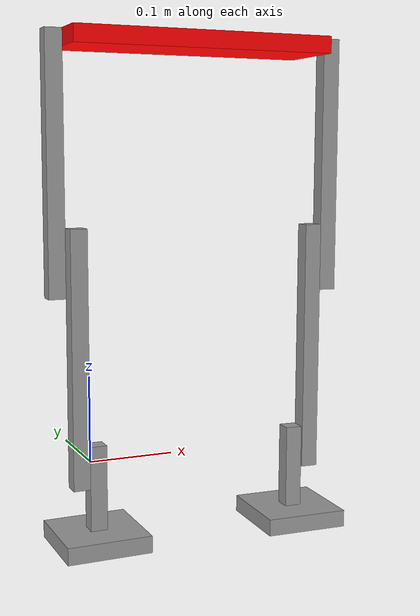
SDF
<?xml version='1.0'?>
<sdf version='1.6'>
  <model name='Humanoid'>
    <link name='link_0'>
      <pose frame=''>0.006667 0 -0.09 0 -0 0</pose>
      <inertial>
        <mass>5</mass>
        <inertia>
          <ixx>0.166667</ixx>
          <ixy>0</ixy>
          <ixz>0</ixz>
          <iyy>0.166667</iyy>
          <iyz>0</iyz>
          <izz>0.166667</izz>
        </inertia>
        <pose frame=''>0 0 0 0 -0 0</pose>
      </inertial>
      <self_collide>0</self_collide>
      <kinematic>0</kinematic>
      <visual name='visual'>
        <pose frame=''>0 0 0 0 -0 0</pose>
        <geometry>
          <box>
            <size>0.1 0.1 0.02</size>
          </box>
        </geometry>
        <material>
          <lighting>1</lighting>
          <script>
            <uri>file://media/materials/scripts/gazebo.material</uri>
            <name>Gazebo/Grey</name>
          </script>
          <ambient>0.3 0.3 0.3 1</ambient>
          <diffuse>0.7 0.7 0.7 1</diffuse>
          <specular>0.01 0.01 0.01 1</specular>
          <emissive>0 0 0 1</emissive>
          <shader type='vertex'>
            <normal_map>__default__</normal_map>
          </shader>
        </material>
        <transparency>0</transparency>
        <cast_shadows>1</cast_shadows>
      </visual>
      <collision name='collision'>
        <laser_retro>0</laser_retro>
        <max_contacts>10</max_contacts>
        <pose frame=''>0 0 0 0 -0 0</pose>
        <geometry>
          <box>
            <size>0.1 0.1 0.02</size>
          </box>
        </geometry>
        <surface>
          <friction>
            <ode>
              <mu>1</mu>
              <mu2>1</mu2>
              <fdir1>0 0 0</fdir1>
              <slip1>0</slip1>
              <slip2>0</slip2>
            </ode>
            <torsional>
              <coefficient>1</coefficient>
              <patch_radius>0</patch_radius>
              <surface_radius>0</surface_radius>
              <use_patch_radius>1</use_patch_radius>
              <ode>
                <slip>0</slip>
              </ode>
            </torsional>
          </friction>
          <bounce>
            <restitution_coefficient>0</restitution_coefficient>
            <threshold>1e+06</threshold>
          </bounce>
          <contact>
            <collide_without_contact>0</collide_without_contact>
            <collide_without_contact_bitmask>1</collide_without_contact_bitmask>
            <collide_bitmask>1</collide_bitmask>
            <ode>
              <soft_cfm>0</soft_cfm>
              <soft_erp>0.2</soft_erp>
              <kp>1e+13</kp>
              <kd>1</kd>
              <max_vel>0.01</max_vel>
              <min_depth>0</min_depth>
            </ode>
            <bullet>
              <split_impulse>1</split_impulse>
              <split_impulse_penetration_threshold>-0.01</split_impulse_penetration_threshold>
              <soft_cfm>0</soft_cfm>
              <soft_erp>0.2</soft_erp>
              <kp>1e+13</kp>
              <kd>1</kd>
            </bullet>
          </contact>
        </surface>
      </collision>
    </link>
    <link name='link_0_clone'>
      <pose frame=''>0.256667 -0.006866 -0.09105 -0.000217 0.006468 -0.033563</pose>
      <inertial>
        <mass>5</mass>
        <inertia>
          <ixx>0.166667</ixx>
          <ixy>0</ixy>
          <ixz>0</ixz>
          <iyy>0.166667</iyy>
          <iyz>0</iyz>
          <izz>0.166667</izz>
        </inertia>
        <pose frame=''>0 0 0 0 -0 0</pose>
      </inertial>
      <self_collide>0</self_collide>
      <kinematic>0</kinematic>
      <visual name='visual'>
        <pose frame=''>0 0 0 0 -0 0</pose>
        <geometry>
          <box>
            <size>0.1 0.1 0.02</size>
          </box>
        </geometry>
        <material>
          <lighting>1</lighting>
          <script>
            <uri>file://media/materials/scripts/gazebo.material</uri>
            <name>Gazebo/Grey</name>
          </script>
          <ambient>0.3 0.3 0.3 1</ambient>
          <diffuse>0.7 0.7 0.7 1</diffuse>
          <specular>0.01 0.01 0.01 1</specular>
          <emissive>0 0 0 1</emissive>
          <shader type='vertex'>
            <normal_map>__default__</normal_map>
          </shader>
        </material>
        <transparency>0</transparency>
        <cast_shadows>1</cast_shadows>
      </visual>
      <collision name='collision'>
        <laser_retro>0</laser_retro>
        <max_contacts>10</max_contacts>
        <pose frame=''>0 0 0 0 -0 0</pose>
        <geometry>
          <box>
            <size>0.1 0.1 0.02</size>
          </box>
        </geometry>
        <surface>
          <friction>
            <ode>
              <mu>1</mu>
              <mu2>1</mu2>
              <fdir1>0 0 0</fdir1>
              <slip1>0</slip1>
              <slip2>0</slip2>
            </ode>
            <torsional>
              <coefficient>1</coefficient>
              <patch_radius>0</patch_radius>
              <surface_radius>0</surface_radius>
              <use_patch_radius>1</use_patch_radius>
              <ode>
                <slip>0</slip>
              </ode>
            </torsional>
          </friction>
          <bounce>
            <restitution_coefficient>0</restitution_coefficient>
            <threshold>1e+06</threshold>
          </bounce>
          <contact>
            <collide_without_contact>0</collide_without_contact>
            <collide_without_contact_bitmask>1</collide_without_contact_bitmask>
            <collide_bitmask>1</collide_bitmask>
            <ode>
              <soft_cfm>0</soft_cfm>
              <soft_erp>0.2</soft_erp>
              <kp>1e+13</kp>
              <kd>1</kd>
              <max_vel>0.01</max_vel>
              <min_depth>0</min_depth>
            </ode>
            <bullet>
              <split_impulse>1</split_impulse>
              <split_impulse_penetration_threshold>-0.01</split_impulse_penetration_threshold>
              <soft_cfm>0</soft_cfm>
              <soft_erp>0.2</soft_erp>
              <kp>1e+13</kp>
              <kd>1</kd>
            </bullet>
          </contact>
        </surface>
      </collision>
    </link>
    <link name='link_1'>
      <pose frame=''>0.006667 0 -0.03 0 -0 0</pose>
      <inertial>
        <mass>1</mass>
        <inertia>
          <ixx>0.166667</ixx>
          <ixy>0</ixy>
          <ixz>0</ixz>
          <iyy>0.166667</iyy>
          <iyz>0</iyz>
          <izz>0.166667</izz>
        </inertia>
        <pose frame=''>0 0 0 0 -0 0</pose>
      </inertial>
      <self_collide>0</self_collide>
      <kinematic>0</kinematic>
      <visual name='visual'>
        <pose frame=''>0 0 0 0 -0 0</pose>
        <geometry>
          <box>
            <size>0.02 0.02 0.1</size>
          </box>
        </geometry>
        <material>
          <lighting>1</lighting>
          <script>
            <uri>file://media/materials/scripts/gazebo.material</uri>
            <name>Gazebo/Grey</name>
          </script>
          <ambient>0.3 0.3 0.3 1</ambient>
          <diffuse>0.7 0.7 0.7 1</diffuse>
          <specular>0.01 0.01 0.01 1</specular>
          <emissive>0 0 0 1</emissive>
          <shader type='vertex'>
            <normal_map>__default__</normal_map>
          </shader>
        </material>
        <transparency>0</transparency>
        <cast_shadows>1</cast_shadows>
      </visual>
      <collision name='collision'>
        <laser_retro>0</laser_retro>
        <max_contacts>10</max_contacts>
        <pose frame=''>0 0 0 0 -0 0</pose>
        <geometry>
          <box>
            <size>0.02 0.02 0.1</size>
          </box>
        </geometry>
        <surface>
          <friction>
            <ode>
              <mu>1</mu>
              <mu2>1</mu2>
              <fdir1>0 0 0</fdir1>
              <slip1>0</slip1>
              <slip2>0</slip2>
            </ode>
            <torsional>
              <coefficient>1</coefficient>
              <patch_radius>0</patch_radius>
              <surface_radius>0</surface_radius>
              <use_patch_radius>1</use_patch_radius>
              <ode>
                <slip>0</slip>
              </ode>
            </torsional>
          </friction>
          <bounce>
            <restitution_coefficient>0</restitution_coefficient>
            <threshold>1e+06</threshold>
          </bounce>
          <contact>
            <collide_without_contact>0</collide_without_contact>
            <collide_without_contact_bitmask>1</collide_without_contact_bitmask>
            <collide_bitmask>1</collide_bitmask>
            <ode>
              <soft_cfm>0</soft_cfm>
              <soft_erp>0.2</soft_erp>
              <kp>1e+13</kp>
              <kd>1</kd>
              <max_vel>0.01</max_vel>
              <min_depth>0</min_depth>
            </ode>
            <bullet>
              <split_impulse>1</split_impulse>
              <split_impulse_penetration_threshold>-0.01</split_impulse_penetration_threshold>
              <soft_cfm>0</soft_cfm>
              <soft_erp>0.2</soft_erp>
              <kp>1e+13</kp>
              <kd>1</kd>
            </bullet>
          </contact>
        </surface>
      </collision>
    </link>
    <link name='link_1_clone'>
      <pose frame=''>-0.013333 0 0.12 0 -0 0</pose>
      <inertial>
        <mass>1</mass>
        <inertia>
          <ixx>0.166667</ixx>
          <ixy>0</ixy>
          <ixz>0</ixz>
          <iyy>0.166667</iyy>
          <iyz>0</iyz>
          <izz>0.166667</izz>
        </inertia>
        <pose frame=''>0 0 0 0 -0 0</pose>
      </inertial>
      <self_collide>0</self_collide>
      <kinematic>0</kinematic>
      <visual name='visual'>
        <pose frame=''>0 0 0 0 -0 0</pose>
        <geometry>
          <box>
            <size>0.02 0.02 0.3</size>
          </box>
        </geometry>
        <material>
          <lighting>1</lighting>
          <script>
            <uri>file://media/materials/scripts/gazebo.material</uri>
            <name>Gazebo/Grey</name>
          </script>
          <ambient>0.3 0.3 0.3 1</ambient>
          <diffuse>0.7 0.7 0.7 1</diffuse>
          <specular>0.01 0.01 0.01 1</specular>
          <emissive>0 0 0 1</emissive>
          <shader type='vertex'>
            <normal_map>__default__</normal_map>
          </shader>
        </material>
        <transparency>0</transparency>
        <cast_shadows>1</cast_shadows>
      </visual>
      <collision name='collision'>
        <laser_retro>0</laser_retro>
        <max_contacts>10</max_contacts>
        <pose frame=''>0 0 0 0 -0 0</pose>
        <geometry>
          <box>
            <size>0.02 0.02 0.3</size>
          </box>
        </geometry>
        <surface>
          <friction>
            <ode>
              <mu>1</mu>
              <mu2>1</mu2>
              <fdir1>0 0 0</fdir1>
              <slip1>0</slip1>
              <slip2>0</slip2>
            </ode>
            <torsional>
              <coefficient>1</coefficient>
              <patch_radius>0</patch_radius>
              <surface_radius>0</surface_radius>
              <use_patch_radius>1</use_patch_radius>
              <ode>
                <slip>0</slip>
              </ode>
            </torsional>
          </friction>
          <bounce>
            <restitution_coefficient>0</restitution_coefficient>
            <threshold>1e+06</threshold>
          </bounce>
          <contact>
            <collide_without_contact>0</collide_without_contact>
            <collide_without_contact_bitmask>1</collide_without_contact_bitmask>
            <collide_bitmask>1</collide_bitmask>
            <ode>
              <soft_cfm>0</soft_cfm>
              <soft_erp>0.2</soft_erp>
              <kp>1e+13</kp>
              <kd>1</kd>
              <max_vel>0.01</max_vel>
              <min_depth>0</min_depth>
            </ode>
            <bullet>
              <split_impulse>1</split_impulse>
              <split_impulse_penetration_threshold>-0.01</split_impulse_penetration_threshold>
              <soft_cfm>0</soft_cfm>
              <soft_erp>0.2</soft_erp>
              <kp>1e+13</kp>
              <kd>1</kd>
            </bullet>
          </contact>
        </surface>
      </collision>
    </link>
    <link name='link_1_clone_0'>
      <pose frame=''>0.257051 -0.006866 -0.031684 -0.000217 0.006468 -0.033563</pose>
      <inertial>
        <mass>1</mass>
        <inertia>
          <ixx>0.166667</ixx>
          <ixy>0</ixy>
          <ixz>0</ixz>
          <iyy>0.166667</iyy>
          <iyz>0</iyz>
          <izz>0.166667</izz>
        </inertia>
        <pose frame=''>0 0 0 0 -0 0</pose>
      </inertial>
      <self_collide>0</self_collide>
      <kinematic>0</kinematic>
      <visual name='visual'>
        <pose frame=''>0 0 0 0 -0 0</pose>
        <geometry>
          <box>
            <size>0.02 0.02 0.1</size>
          </box>
        </geometry>
        <material>
          <lighting>1</lighting>
          <script>
            <uri>file://media/materials/scripts/gazebo.material</uri>
            <name>Gazebo/Grey</name>
          </script>
          <ambient>0.3 0.3 0.3 1</ambient>
          <diffuse>0.7 0.7 0.7 1</diffuse>
          <specular>0.01 0.01 0.01 1</specular>
          <emissive>0 0 0 1</emissive>
          <shader type='vertex'>
            <normal_map>__default__</normal_map>
          </shader>
        </material>
        <transparency>0</transparency>
        <cast_shadows>1</cast_shadows>
      </visual>
      <collision name='collision'>
        <laser_retro>0</laser_retro>
        <max_contacts>10</max_contacts>
        <pose frame=''>0 0 0 0 -0 0</pose>
        <geometry>
          <box>
            <size>0.02 0.02 0.1</size>
          </box>
        </geometry>
        <surface>
          <friction>
            <ode>
              <mu>1</mu>
              <mu2>1</mu2>
              <fdir1>0 0 0</fdir1>
              <slip1>0</slip1>
              <slip2>0</slip2>
            </ode>
            <torsional>
              <coefficient>1</coefficient>
              <patch_radius>0</patch_radius>
              <surface_radius>0</surface_radius>
              <use_patch_radius>1</use_patch_radius>
              <ode>
                <slip>0</slip>
              </ode>
            </torsional>
          </friction>
          <bounce>
            <restitution_coefficient>0</restitution_coefficient>
            <threshold>1e+06</threshold>
          </bounce>
          <contact>
            <collide_without_contact>0</collide_without_contact>
            <collide_without_contact_bitmask>1</collide_without_contact_bitmask>
            <collide_bitmask>1</collide_bitmask>
            <ode>
              <soft_cfm>0</soft_cfm>
              <soft_erp>0.2</soft_erp>
              <kp>1e+13</kp>
              <kd>1</kd>
              <max_vel>0.01</max_vel>
              <min_depth>0</min_depth>
            </ode>
            <bullet>
              <split_impulse>1</split_impulse>
              <split_impulse_penetration_threshold>-0.01</split_impulse_penetration_threshold>
              <soft_cfm>0</soft_cfm>
              <soft_erp>0.2</soft_erp>
              <kp>1e+13</kp>
              <kd>1</kd>
            </bullet>
          </contact>
        </surface>
      </collision>
    </link>
    <link name='link_1_clone_clone'>
      <pose frame=''>-0.03389 0.016897 0.340001 0 5e-06 -0.021945</pose>
      <inertial>
        <mass>1</mass>
        <inertia>
          <ixx>0.166667</ixx>
          <ixy>0</ixy>
          <ixz>0</ixz>
          <iyy>0.166667</iyy>
          <iyz>0</iyz>
          <izz>0.166667</izz>
        </inertia>
        <pose frame=''>0 0 0 0 -0 0</pose>
      </inertial>
      <self_collide>0</self_collide>
      <kinematic>0</kinematic>
      <visual name='visual'>
        <pose frame=''>0 0 0 0 -0 0</pose>
        <geometry>
          <box>
            <size>0.02 0.02 0.3</size>
          </box>
        </geometry>
        <material>
          <lighting>1</lighting>
          <script>
            <uri>file://media/materials/scripts/gazebo.material</uri>
            <name>Gazebo/Grey</name>
          </script>
          <ambient>0.3 0.3 0.3 1</ambient>
          <diffuse>0.7 0.7 0.7 1</diffuse>
          <specular>0.01 0.01 0.01 1</specular>
          <emissive>0 0 0 1</emissive>
          <shader type='vertex'>
            <normal_map>__default__</normal_map>
          </shader>
        </material>
        <transparency>0</transparency>
        <cast_shadows>1</cast_shadows>
      </visual>
      <collision name='collision'>
        <laser_retro>0</laser_retro>
        <max_contacts>10</max_contacts>
        <pose frame=''>0 0 0 0 -0 0</pose>
        <geometry>
          <box>
            <size>0.02 0.02 0.3</size>
          </box>
        </geometry>
        <surface>
          <friction>
            <ode>
              <mu>1</mu>
              <mu2>1</mu2>
              <fdir1>0 0 0</fdir1>
              <slip1>0</slip1>
              <slip2>0</slip2>
            </ode>
            <torsional>
              <coefficient>1</coefficient>
              <patch_radius>0</patch_radius>
              <surface_radius>0</surface_radius>
              <use_patch_radius>1</use_patch_radius>
              <ode>
                <slip>0</slip>
              </ode>
            </torsional>
          </friction>
          <bounce>
            <restitution_coefficient>0</restitution_coefficient>
            <threshold>1e+06</threshold>
          </bounce>
          <contact>
            <collide_without_contact>0</collide_without_contact>
            <collide_without_contact_bitmask>1</collide_without_contact_bitmask>
            <collide_bitmask>1</collide_bitmask>
            <ode>
              <soft_cfm>0</soft_cfm>
              <soft_erp>0.2</soft_erp>
              <kp>1e+13</kp>
              <kd>1</kd>
              <max_vel>0.01</max_vel>
              <min_depth>0</min_depth>
            </ode>
            <bullet>
              <split_impulse>1</split_impulse>
              <split_impulse_penetration_threshold>-0.01</split_impulse_penetration_threshold>
              <soft_cfm>0</soft_cfm>
              <soft_erp>0.2</soft_erp>
              <kp>1e+13</kp>
              <kd>1</kd>
            </bullet>
          </contact>
        </surface>
      </collision>
    </link>
    <link name='link_1_clone_clone_0'>
      <pose frame=''>0.277922 -0.010142 0.118054 -0.000217 0.006468 -0.033563</pose>
      <inertial>
        <mass>1</mass>
        <inertia>
          <ixx>0.166667</ixx>
          <ixy>0</ixy>
          <ixz>0</ixz>
          <iyy>0.166667</iyy>
          <iyz>0</iyz>
          <izz>0.166667</izz>
        </inertia>
        <pose frame=''>0 0 0 0 -0 0</pose>
      </inertial>
      <self_collide>0</self_collide>
      <kinematic>0</kinematic>
      <visual name='visual'>
        <pose frame=''>0 0 0 0 -0 0</pose>
        <geometry>
          <box>
            <size>0.02 0.02 0.3</size>
          </box>
        </geometry>
        <material>
          <lighting>1</lighting>
          <script>
            <uri>file://media/materials/scripts/gazebo.material</uri>
            <name>Gazebo/Grey</name>
          </script>
          <ambient>0.3 0.3 0.3 1</ambient>
          <diffuse>0.7 0.7 0.7 1</diffuse>
          <specular>0.01 0.01 0.01 1</specular>
          <emissive>0 0 0 1</emissive>
          <shader type='vertex'>
            <normal_map>__default__</normal_map>
          </shader>
        </material>
        <transparency>0</transparency>
        <cast_shadows>1</cast_shadows>
      </visual>
      <collision name='collision'>
        <laser_retro>0</laser_retro>
        <max_contacts>10</max_contacts>
        <pose frame=''>0 0 0 0 -0 0</pose>
        <geometry>
          <box>
            <size>0.02 0.02 0.3</size>
          </box>
        </geometry>
        <surface>
          <friction>
            <ode>
              <mu>1</mu>
              <mu2>1</mu2>
              <fdir1>0 0 0</fdir1>
              <slip1>0</slip1>
              <slip2>0</slip2>
            </ode>
            <torsional>
              <coefficient>1</coefficient>
              <patch_radius>0</patch_radius>
              <surface_radius>0</surface_radius>
              <use_patch_radius>1</use_patch_radius>
              <ode>
                <slip>0</slip>
              </ode>
            </torsional>
          </friction>
          <bounce>
            <restitution_coefficient>0</restitution_coefficient>
            <threshold>1e+06</threshold>
          </bounce>
          <contact>
            <collide_without_contact>0</collide_without_contact>
            <collide_without_contact_bitmask>1</collide_without_contact_bitmask>
            <collide_bitmask>1</collide_bitmask>
            <ode>
              <soft_cfm>0</soft_cfm>
              <soft_erp>0.2</soft_erp>
              <kp>1e+13</kp>
              <kd>1</kd>
              <max_vel>0.01</max_vel>
              <min_depth>0</min_depth>
            </ode>
            <bullet>
              <split_impulse>1</split_impulse>
              <split_impulse_penetration_threshold>-0.01</split_impulse_penetration_threshold>
              <soft_cfm>0</soft_cfm>
              <soft_erp>0.2</soft_erp>
              <kp>1e+13</kp>
              <kd>1</kd>
            </bullet>
          </contact>
        </surface>
      </collision>
    </link>
    <link name='link_1_clone_clone_clone'>
      <pose frame=''>0.29956 -0.010603 0.338069 -0.000359 0.006466 -0.055508</pose>
      <inertial>
        <mass>1</mass>
        <inertia>
          <ixx>0.166667</ixx>
          <ixy>0</ixy>
          <ixz>0</ixz>
          <iyy>0.166667</iyy>
          <iyz>0</iyz>
          <izz>0.166667</izz>
        </inertia>
        <pose frame=''>0 0 0 0 -0 0</pose>
      </inertial>
      <self_collide>0</self_collide>
      <kinematic>0</kinematic>
      <gravity>1</gravity>
      <visual name='visual'>
        <pose frame=''>0 0 0 0 -0 0</pose>
        <geometry>
          <box>
            <size>0.02 0.02 0.3</size>
          </box>
        </geometry>
        <material>
          <lighting>1</lighting>
          <script>
            <uri>file://media/materials/scripts/gazebo.material</uri>
            <name>Gazebo/Grey</name>
          </script>
          <ambient>0.3 0.3 0.3 1</ambient>
          <diffuse>0.7 0.7 0.7 1</diffuse>
          <specular>0.01 0.01 0.01 1</specular>
          <emissive>0 0 0 1</emissive>
          <shader type='vertex'>
            <normal_map>__default__</normal_map>
          </shader>
        </material>
        <transparency>0</transparency>
        <cast_shadows>1</cast_shadows>
      </visual>
      <collision name='collision'>
        <laser_retro>0</laser_retro>
        <max_contacts>10</max_contacts>
        <pose frame=''>0 0 0 0 -0 0</pose>
        <geometry>
          <box>
            <size>0.02 0.02 0.3</size>
          </box>
        </geometry>
        <surface>
          <friction>
            <ode>
              <mu>1</mu>
              <mu2>1</mu2>
              <fdir1>0 0 0</fdir1>
              <slip1>0</slip1>
              <slip2>0</slip2>
            </ode>
            <torsional>
              <coefficient>1</coefficient>
              <patch_radius>0</patch_radius>
              <surface_radius>0</surface_radius>
              <use_patch_radius>1</use_patch_radius>
              <ode>
                <slip>0</slip>
              </ode>
            </torsional>
          </friction>
          <bounce>
            <restitution_coefficient>0</restitution_coefficient>
            <threshold>1e+06</threshold>
          </bounce>
          <contact>
            <collide_without_contact>0</collide_without_contact>
            <collide_without_contact_bitmask>1</collide_without_contact_bitmask>
            <collide_bitmask>1</collide_bitmask>
            <ode>
              <soft_cfm>0</soft_cfm>
              <soft_erp>0.2</soft_erp>
              <kp>1e+13</kp>
              <kd>1</kd>
              <max_vel>0.01</max_vel>
              <min_depth>0</min_depth>
            </ode>
            <bullet>
              <split_impulse>1</split_impulse>
              <split_impulse_penetration_threshold>-0.01</split_impulse_penetration_threshold>
              <soft_cfm>0</soft_cfm>
              <soft_erp>0.2</soft_erp>
              <kp>1e+13</kp>
              <kd>1</kd>
            </bullet>
          </contact>
        </surface>
      </collision>
    </link>
    <link name='link_3'>
      <pose frame=''>0.13353 0.013252 0.480016 -0.000217 0.006468 -0.033563</pose>
      <inertial>
        <mass>1</mass>
        <inertia>
          <ixx>0.166667</ixx>
          <ixy>0</ixy>
          <ixz>0</ixz>
          <iyy>0.166667</iyy>
          <iyz>0</iyz>
          <izz>0.166667</izz>
        </inertia>
        <pose frame=''>0 0 0 0 -0 0</pose>
      </inertial>
      <self_collide>0</self_collide>
      <kinematic>0</kinematic>
      <gravity>1</gravity>
      <visual name='visual'>
        <pose frame=''>0 0 0 0 -0 0</pose>
        <geometry>
          <box>
            <size>0.31 0.1 0.02</size>
          </box>
        </geometry>
        <material>
          <lighting>1</lighting>
          <script>
            <uri>file://media/materials/scripts/gazebo.material</uri>
            <name>Gazebo/Grey</name>
          </script>
          <ambient>1 0 0 1</ambient>
          <diffuse>0.7 0.7 0.7 1</diffuse>
          <specular>0.01 0.01 0.01 1</specular>
          <emissive>0 0 0 1</emissive>
          <shader type='vertex'>
            <normal_map>__default__</normal_map>
          </shader>
        </material>
        <transparency>0</transparency>
        <cast_shadows>1</cast_shadows>
      </visual>
      <collision name='collision'>
        <laser_retro>0</laser_retro>
        <max_contacts>10</max_contacts>
        <pose frame=''>0 0 0 0 -0 0</pose>
        <geometry>
          <box>
            <size>0.31 0.1 0.02</size>
          </box>
        </geometry>
        <surface>
          <friction>
            <ode>
              <mu>1</mu>
              <mu2>1</mu2>
              <fdir1>0 0 0</fdir1>
              <slip1>0</slip1>
              <slip2>0</slip2>
            </ode>
            <torsional>
              <coefficient>1</coefficient>
              <patch_radius>0</patch_radius>
              <surface_radius>0</surface_radius>
              <use_patch_radius>1</use_patch_radius>
              <ode>
                <slip>0</slip>
              </ode>
            </torsional>
          </friction>
          <bounce>
            <restitution_coefficient>0</restitution_coefficient>
            <threshold>1e+06</threshold>
          </bounce>
          <contact>
            <collide_without_contact>0</collide_without_contact>
            <collide_without_contact_bitmask>1</collide_without_contact_bitmask>
            <collide_bitmask>1</collide_bitmask>
            <ode>
              <soft_cfm>0</soft_cfm>
              <soft_erp>0.2</soft_erp>
              <kp>1e+13</kp>
              <kd>1</kd>
              <max_vel>0.01</max_vel>
              <min_depth>0</min_depth>
            </ode>
            <bullet>
              <split_impulse>1</split_impulse>
              <split_impulse_penetration_threshold>-0.01</split_impulse_penetration_threshold>
              <soft_cfm>0</soft_cfm>
              <soft_erp>0.2</soft_erp>
              <kp>1e+13</kp>
              <kd>1</kd>
            </bullet>
          </contact>
        </surface>
      </collision>
    </link>
    <joint name='link_0_JOINT_0' type='fixed'>
      <parent>link_0</parent>
      <child>link_1</child>
      <pose frame=''>0 0 -0.05 0 -0 0</pose>
      <physics>
        <ode>
          <limit>
            <cfm>0</cfm>
            <erp>0.2</erp>
          </limit>
          <suspension>
            <cfm>0</cfm>
            <erp>0.2</erp>
          </suspension>
        </ode>
      </physics>
    </joint>
    <joint name='link_0_clone_JOINT_9' type='fixed'>
      <parent>link_0_clone</parent>
      <child>link_1_clone_0</child>
      <pose frame=''>0 0 -0.05 0 -0 0</pose>
      <physics>
        <ode>
          <limit>
            <cfm>0</cfm>
            <erp>0.2</erp>
          </limit>
          <suspension>
            <cfm>0</cfm>
            <erp>0.2</erp>
          </suspension>
        </ode>
      </physics>
    </joint>
    <joint name='link_1_JOINT_1' type='revolute'>
      <parent>link_1</parent>
      <child>link_1_clone</child>
      <pose frame=''>0 0 -0.12 0 -0 0</pose>
      <axis>
        <xyz>1 0 0</xyz>
        <use_parent_model_frame>0</use_parent_model_frame>
        <limit>
          <lower>0</lower>
          <upper>0</upper>
          <effort>-1</effort>
          <velocity>-1</velocity>
        </limit>
        <dynamics>
          <spring_reference>0</spring_reference>
          <spring_stiffness>0</spring_stiffness>
          <damping>0</damping>
          <friction>0</friction>
        </dynamics>
      </axis>
      <physics>
        <ode>
          <limit>
            <cfm>0</cfm>
            <erp>0.2</erp>
          </limit>
          <suspension>
            <cfm>0</cfm>
            <erp>0.2</erp>
          </suspension>
        </ode>
      </physics>
    </joint>
    <joint name='link_1_clone_0_JOINT_12' type='revolute'>
      <parent>link_1_clone_0</parent>
      <child>link_1_clone_clone_0</child>
      <pose frame=''>0 0 -0.12 0 -0 0</pose>
      <axis>
        <xyz>1 0 0</xyz>
        <use_parent_model_frame>0</use_parent_model_frame>
        <limit>
          <lower>0</lower>
          <upper>0</upper>
          <effort>-1</effort>
          <velocity>-1</velocity>
        </limit>
        <dynamics>
          <spring_reference>0</spring_reference>
          <spring_stiffness>0</spring_stiffness>
          <damping>0</damping>
          <friction>0</friction>
        </dynamics>
      </axis>
      <physics>
        <ode>
          <limit>
            <cfm>0</cfm>
            <erp>0.2</erp>
          </limit>
          <suspension>
            <cfm>0</cfm>
            <erp>0.2</erp>
          </suspension>
        </ode>
      </physics>
    </joint>
    <joint name='link_1_clone_JOINT_2' type='revolute'>
      <parent>link_1_clone</parent>
      <child>link_1_clone_clone</child>
      <pose frame=''>0 0 -0.12 0 -0 0</pose>
      <axis>
        <xyz>1 0 0</xyz>
        <use_parent_model_frame>0</use_parent_model_frame>
        <limit>
          <lower>-0.524</lower>
          <upper>0.524</upper>
          <effort>-1</effort>
          <velocity>-1</velocity>
        </limit>
        <dynamics>
          <spring_reference>0</spring_reference>
          <spring_stiffness>0</spring_stiffness>
          <damping>0</damping>
          <friction>0</friction>
        </dynamics>
      </axis>
      <physics>
        <ode>
          <limit>
            <cfm>0</cfm>
            <erp>0.2</erp>
          </limit>
          <suspension>
            <cfm>0</cfm>
            <erp>0.2</erp>
          </suspension>
        </ode>
      </physics>
    </joint>
    <joint name='link_1_clone_clone_0_JOINT_13' type='revolute'>
      <parent>link_1_clone_clone_0</parent>
      <child>link_1_clone_clone_clone</child>
      <pose frame=''>0 0 -0.12 0 -0 0</pose>
      <axis>
        <xyz>1 0 0</xyz>
        <use_parent_model_frame>0</use_parent_model_frame>
        <limit>
          <lower>-0.524</lower>
          <upper>0.524</upper>
          <effort>-1</effort>
          <velocity>-1</velocity>
        </limit>
        <dynamics>
          <spring_reference>0</spring_reference>
          <spring_stiffness>0</spring_stiffness>
          <damping>0</damping>
          <friction>0</friction>
        </dynamics>
      </axis>
      <physics>
        <ode>
          <limit>
            <cfm>0</cfm>
            <erp>0.2</erp>
          </limit>
          <suspension>
            <cfm>0</cfm>
            <erp>0.2</erp>
          </suspension>
        </ode>
      </physics>
    </joint>
    <joint name='link_1_clone_clone_JOINT_15' type='revolute'>
      <parent>link_1_clone_clone</parent>
      <child>link_3</child>
      <pose frame=''>-0.15 0 0 0 -0 0</pose>
      <axis>
        <xyz>1 0 0</xyz>
        <use_parent_model_frame>0</use_parent_model_frame>
        <limit>
          <lower>-0.524</lower>
          <upper>0.524</upper>
          <effort>-1</effort>
          <velocity>-1</velocity>
        </limit>
        <dynamics>
          <spring_reference>0</spring_reference>
          <spring_stiffness>0</spring_stiffness>
          <damping>0</damping>
          <friction>0</friction>
        </dynamics>
      </axis>
      <physics>
        <ode>
          <limit>
            <cfm>0</cfm>
            <erp>0.2</erp>
          </limit>
          <suspension>
            <cfm>0</cfm>
            <erp>0.2</erp>
          </suspension>
        </ode>
      </physics>
    </joint>
    <joint name='link_1_clone_clone_clone_JOINT_17' type='revolute'>
      <parent>link_1_clone_clone_clone</parent>
      <child>link_3</child>
      <pose frame=''>0.15 0 0 0 -0 0</pose>
      <axis>
        <xyz>1 0 0</xyz>
        <use_parent_model_frame>0</use_parent_model_frame>
        <limit>
          <lower>-0.524</lower>
          <upper>0.524</upper>
          <effort>-1</effort>
          <velocity>-1</velocity>
        </limit>
        <dynamics>
          <spring_reference>0</spring_reference>
          <spring_stiffness>0</spring_stiffness>
          <damping>0</damping>
          <friction>0</friction>
        </dynamics>
      </axis>
      <physics>
        <ode>
          <limit>
            <cfm>0</cfm>
            <erp>0.2</erp>
          </limit>
          <suspension>
            <cfm>0</cfm>
            <erp>0.2</erp>
          </suspension>
        </ode>
      </physics>
    </joint>
    <static>0</static>
    <allow_auto_disable>1</allow_auto_disable>
  </model>
</sdf>
